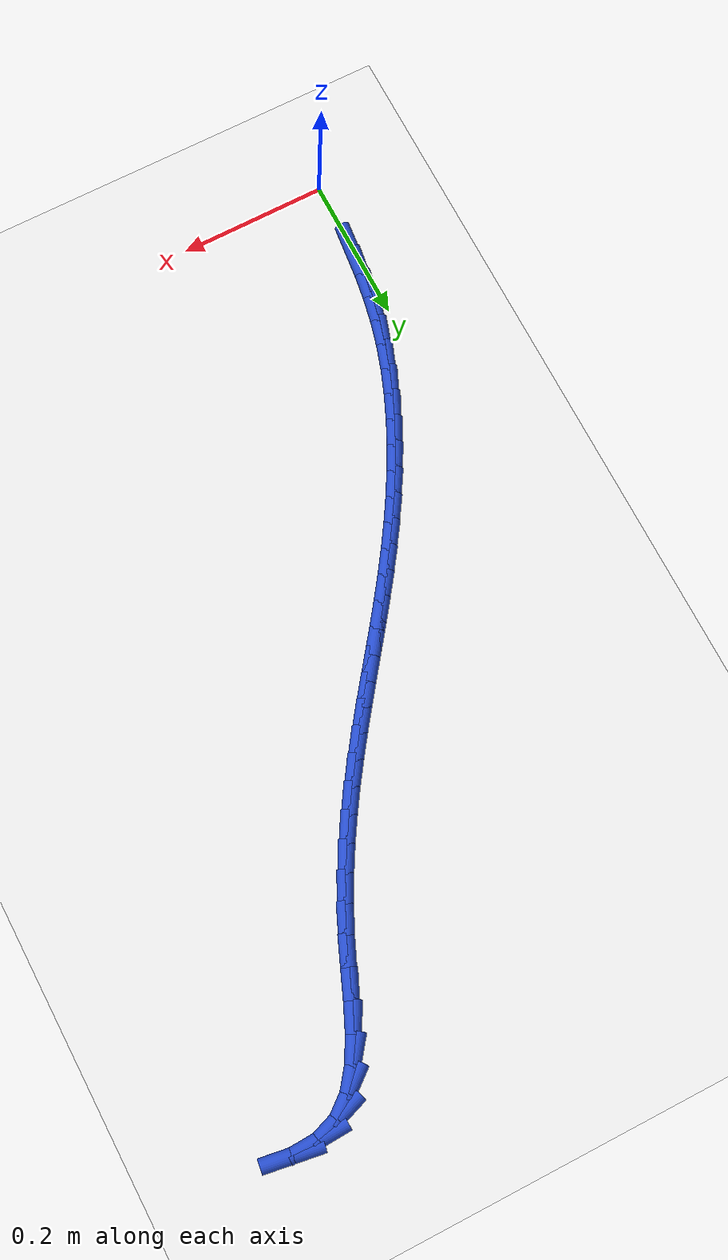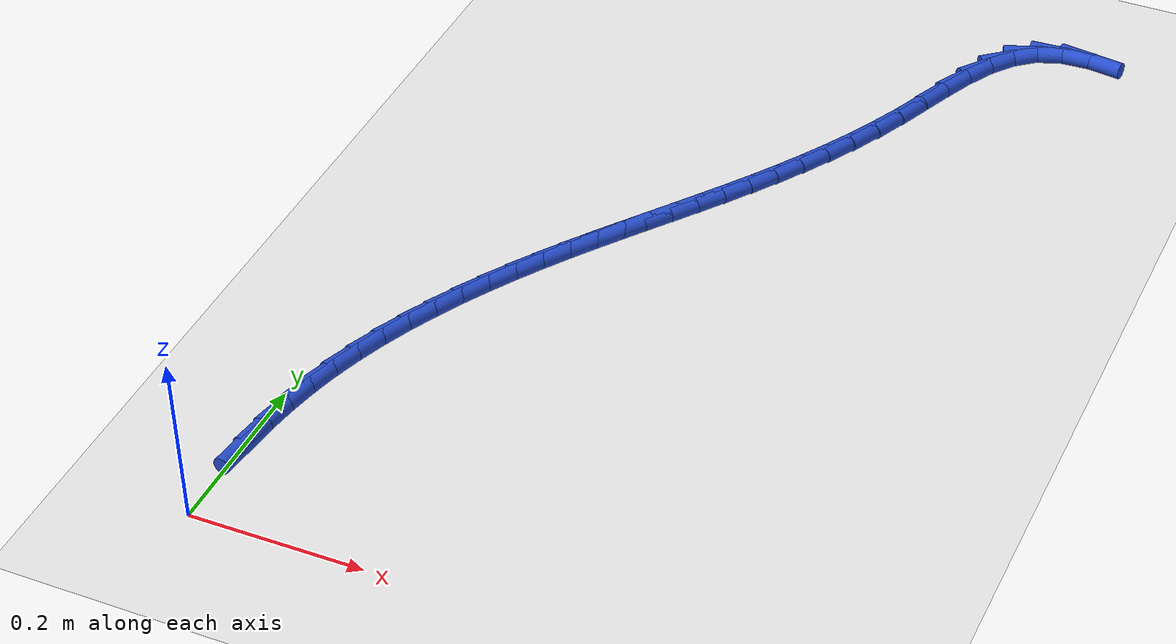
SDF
<sdf version="1.6">
 <world name="default">
  <model name="ground_plane">
   <static>1</static>
   <link name="link">
    <collision name="collision">
     <geometry><plane><normal>0 0 1</normal><size>100 100</size></plane></geometry>
     <surface><friction><ode><mu>100</mu><mu2>50</mu2></ode></friction></surface>
    </collision>
    <visual name="visual">
     <cast_shadows>0</cast_shadows>
     <geometry><plane><normal>0 0 1</normal><size>100 100</size></plane></geometry>
     <material>
      <script><uri>file://media/materials/scripts/gazebo.material</uri><name>Gazebo/WhiteGlow</name></script>
     </material>
    </visual>
   </link>
  </model>
  <model name="line">
   <link name="link_3">
    <pose>0.00487525272768681 0.10636903390676378 0.01 0 1.57 1.455578202647358</pose>
    <collision name="collision">
     <geometry><cylinder><radius>0.01</radius><length>0.08</length></cylinder></geometry>
    </collision>
    <visual name="visual">
     <material>
      <script><name>Gazebo/Blue</name><uri>file://media/materials/scripts/gazebo.material</uri></script>
     </material>
     <geometry><cylinder><radius>0.01</radius><length>0.08</length></cylinder></geometry>
    </visual>
   </link>
   <link name="link_4">
    <pose>0.008914769090732067 0.14127348493889702 0.01 0 1.57 1.4118207604691668</pose>
    <collision name="collision">
     <geometry><cylinder><radius>0.01</radius><length>0.08</length></cylinder></geometry>
    </collision>
    <visual name="visual">
     <material>
      <script><name>Gazebo/Blue</name><uri>file://media/materials/scripts/gazebo.material</uri></script>
     </material>
     <geometry><cylinder><radius>0.01</radius><length>0.08</length></cylinder></geometry>
    </visual>
   </link>
   <link name="link_5">
    <pose>0.014458814000630576 0.17585276555083262 0.01 0 1.57 1.3626906049853438</pose>
    <collision name="collision">
     <geometry><cylinder><radius>0.01</radius><length>0.08</length></cylinder></geometry>
    </collision>
    <visual name="visual">
     <material>
      <script><name>Gazebo/Blue</name><uri>file://media/materials/scripts/gazebo.material</uri></script>
     </material>
     <geometry><cylinder><radius>0.01</radius><length>0.08</length></cylinder></geometry>
    </visual>
   </link>
   <link name="link_6">
    <pose>0.0216857749493494 0.21007734157148839 0.01 0 1.57 1.308523818144727</pose>
    <collision name="collision">
     <geometry><cylinder><radius>0.01</radius><length>0.08</length></cylinder></geometry>
    </collision>
    <visual name="visual">
     <material>
      <script><name>Gazebo/Blue</name><uri>file://media/materials/scripts/gazebo.material</uri></script>
     </material>
     <geometry><cylinder><radius>0.01</radius><length>0.08</length></cylinder></geometry>
    </visual>
   </link>
   <link name="link_7">
    <pose>0.030770375702281652 0.24391748311709124 0.01 0 1.57 1.2536198985429525</pose>
    <collision name="collision">
     <geometry><cylinder><radius>0.01</radius><length>0.08</length></cylinder></geometry>
    </collision>
    <visual name="visual">
     <material>
      <script><name>Gazebo/Blue</name><uri>file://media/materials/scripts/gazebo.material</uri></script>
     </material>
     <geometry><cylinder><radius>0.01</radius><length>0.08</length></cylinder></geometry>
    </visual>
   </link>
   <link name="link_8">
    <pose>0.04174016180733978 0.2773355981874211 0.01 0 1.57 1.2031949497875287</pose>
    <collision name="collision">
     <geometry><cylinder><radius>0.01</radius><length>0.08</length></cylinder></geometry>
    </collision>
    <visual name="visual">
     <material>
      <script><name>Gazebo/Blue</name><uri>file://media/materials/scripts/gazebo.material</uri></script>
     </material>
     <geometry><cylinder><radius>0.01</radius><length>0.08</length></cylinder></geometry>
    </visual>
   </link>
   <link name="link_9">
    <pose>0.054428694339304085 0.310283732321407 0.01 0 1.57 1.1573591260311897</pose>
    <collision name="collision">
     <geometry><cylinder><radius>0.01</radius><length>0.08</length></cylinder></geometry>
    </collision>
    <visual name="visual">
     <material>
      <script><name>Gazebo/Blue</name><uri>file://media/materials/scripts/gazebo.material</uri></script>
     </material>
     <geometry><cylinder><radius>0.01</radius><length>0.08</length></cylinder></geometry>
    </visual>
   </link>
   <link name="link_10">
    <pose>0.06865628506568291 0.34271322329294035 0.01 0 1.57 1.1158265058710326</pose>
    <collision name="collision">
     <geometry><cylinder><radius>0.01</radius><length>0.08</length></cylinder></geometry>
    </collision>
    <visual name="visual">
     <material>
      <script><name>Gazebo/Blue</name><uri>file://media/materials/scripts/gazebo.material</uri></script>
     </material>
     <geometry><cylinder><radius>0.01</radius><length>0.08</length></cylinder></geometry>
    </visual>
   </link>
   <link name="link_11">
    <pose>0.0842432457539847 0.37457540887591245 0.01 0 1.57 1.0783011402010652</pose>
    <collision name="collision">
     <geometry><cylinder><radius>0.01</radius><length>0.08</length></cylinder></geometry>
    </collision>
    <visual name="visual">
     <material>
      <script><name>Gazebo/Blue</name><uri>file://media/materials/scripts/gazebo.material</uri></script>
     </material>
     <geometry><cylinder><radius>0.01</radius><length>0.08</length></cylinder></geometry>
    </visual>
   </link>
   <link name="link_12">
    <pose>0.10100988817171773 0.4058216268442151 0.01 0 1.57 1.0444955488038663</pose>
    <collision name="collision">
     <geometry><cylinder><radius>0.01</radius><length>0.08</length></cylinder></geometry>
    </collision>
    <visual name="visual">
     <material>
      <script><name>Gazebo/Blue</name><uri>file://media/materials/scripts/gazebo.material</uri></script>
     </material>
     <geometry><cylinder><radius>0.01</radius><length>0.08</length></cylinder></geometry>
    </visual>
   </link>
   <link name="link_13">
    <pose>0.11877652408639047 0.43640321497173945 0.01 0 1.57 1.0141433413400252</pose>
    <collision name="collision">
     <geometry><cylinder><radius>0.01</radius><length>0.08</length></cylinder></geometry>
    </collision>
    <visual name="visual">
     <material>
      <script><name>Gazebo/Blue</name><uri>file://media/materials/scripts/gazebo.material</uri></script>
     </material>
     <geometry><cylinder><radius>0.01</radius><length>0.08</length></cylinder></geometry>
    </visual>
   </link>
   <link name="link_14">
    <pose>0.13736346526551124 0.4662715110323771 0.01 0 1.57 0.9870227367610622</pose>
    <collision name="collision">
     <geometry><cylinder><radius>0.01</radius><length>0.08</length></cylinder></geometry>
    </collision>
    <visual name="visual">
     <material>
      <script><name>Gazebo/Blue</name><uri>file://media/materials/scripts/gazebo.material</uri></script>
     </material>
     <geometry><cylinder><radius>0.01</radius><length>0.08</length></cylinder></geometry>
    </visual>
   </link>
   <link name="link_15">
    <pose>0.15659173019144332 0.4953798761029348 0.01 0 1.57 0.9636544328907303</pose>
    <collision name="collision">
     <geometry><cylinder><radius>0.01</radius><length>0.08</length></cylinder></geometry>
    </collision>
    <visual name="visual">
     <material>
      <script><name>Gazebo/Blue</name><uri>file://media/materials/scripts/gazebo.material</uri></script>
     </material>
     <geometry><cylinder><radius>0.01</radius><length>0.08</length></cylinder></geometry>
    </visual>
   </link>
   <link name="link_16">
    <pose>0.17631278960857188 0.5237688551507285 0.01 0 1.57 0.9451159483217858</pose>
    <collision name="collision">
     <geometry><cylinder><radius>0.01</radius><length>0.08</length></cylinder></geometry>
    </collision>
    <visual name="visual">
     <material>
      <script><name>Gazebo/Blue</name><uri>file://media/materials/scripts/gazebo.material</uri></script>
     </material>
     <geometry><cylinder><radius>0.01</radius><length>0.08</length></cylinder></geometry>
    </visual>
   </link>
   <link name="link_17">
    <pose>0.19641948788670976 0.5515974445614487 0.01 0 1.57 0.9317094310504189</pose>
    <collision name="collision">
     <geometry><cylinder><radius>0.01</radius><length>0.08</length></cylinder></geometry>
    </collision>
    <visual name="visual">
     <material>
      <script><name>Gazebo/Blue</name><uri>file://media/materials/scripts/gazebo.material</uri></script>
     </material>
     <geometry><cylinder><radius>0.01</radius><length>0.08</length></cylinder></geometry>
    </visual>
   </link>
   <link name="link_18">
    <pose>0.21680762490326466 0.5790331022482214 0.01 0 1.57 0.9235954429858738</pose>
    <collision name="collision">
     <geometry><cylinder><radius>0.01</radius><length>0.08</length></cylinder></geometry>
    </collision>
    <visual name="visual">
     <material>
      <script><name>Gazebo/Blue</name><uri>file://media/materials/scripts/gazebo.material</uri></script>
     </material>
     <geometry><cylinder><radius>0.01</radius><length>0.08</length></cylinder></geometry>
    </visual>
   </link>
   <link name="link_19">
    <pose>0.23737300053564445 0.6062432861241727 0.01 0 1.57 0.9208612967935044</pose>
    <collision name="collision">
     <geometry><cylinder><radius>0.01</radius><length>0.08</length></cylinder></geometry>
    </collision>
    <visual name="visual">
     <material>
      <script><name>Gazebo/Blue</name><uri>file://media/materials/scripts/gazebo.material</uri></script>
     </material>
     <geometry><cylinder><radius>0.01</radius><length>0.08</length></cylinder></geometry>
    </visual>
   </link>
   <link name="link_20">
    <pose>0.25801141466125677 0.6333954541024281 0.01 0 1.57 0.923525195483748</pose>
    <collision name="collision">
     <geometry><cylinder><radius>0.01</radius><length>0.08</length></cylinder></geometry>
    </collision>
    <visual name="visual">
     <material>
      <script><name>Gazebo/Blue</name><uri>file://media/materials/scripts/gazebo.material</uri></script>
     </material>
     <geometry><cylinder><radius>0.01</radius><length>0.08</length></cylinder></geometry>
    </visual>
   </link>
   <link name="link_21">
    <pose>0.27861866715750966 0.6606570640961146 0.01 0 1.57 0.9315381721507964</pose>
    <collision name="collision">
     <geometry><cylinder><radius>0.01</radius><length>0.08</length></cylinder></geometry>
    </collision>
    <visual name="visual">
     <material>
      <script><name>Gazebo/Blue</name><uri>file://media/materials/scripts/gazebo.material</uri></script>
     </material>
     <geometry><cylinder><radius>0.01</radius><length>0.08</length></cylinder></geometry>
    </visual>
   </link>
   <link name="link_22">
    <pose>0.29909055790181094 0.6881955740183578 0.01 0 1.57 0.9447835280982422</pose>
    <collision name="collision">
     <geometry><cylinder><radius>0.01</radius><length>0.08</length></cylinder></geometry>
    </collision>
    <visual name="visual">
     <material>
      <script><name>Gazebo/Blue</name><uri>file://media/materials/scripts/gazebo.material</uri></script>
     </material>
     <geometry><cylinder><radius>0.01</radius><length>0.08</length></cylinder></geometry>
    </visual>
   </link>
   <link name="link_23">
    <pose>0.3193228867715682 0.7161784417822838 0.01 0 1.57 0.963074153045013</pose>
    <collision name="collision">
     <geometry><cylinder><radius>0.01</radius><length>0.08</length></cylinder></geometry>
    </collision>
    <visual name="visual">
     <material>
      <script><name>Gazebo/Blue</name><uri>file://media/materials/scripts/gazebo.material</uri></script>
     </material>
     <geometry><cylinder><radius>0.01</radius><length>0.08</length></cylinder></geometry>
    </visual>
   </link>
   <link name="link_24">
    <pose>0.3392114536441894 0.7447731253010184 0.01 0 1.57 0.9861487482776489</pose>
    <collision name="collision">
     <geometry><cylinder><radius>0.01</radius><length>0.08</length></cylinder></geometry>
    </collision>
    <visual name="visual">
     <material>
      <script><name>Gazebo/Blue</name><uri>file://media/materials/scripts/gazebo.material</uri></script>
     </material>
     <geometry><cylinder><radius>0.01</radius><length>0.08</length></cylinder></geometry>
    </visual>
   </link>
   <link name="link_25">
    <pose>0.3586520583970824 0.7741470824876877 0.01 0 1.57 1.01366850116137</pose>
    <collision name="collision">
     <geometry><cylinder><radius>0.01</radius><length>0.08</length></cylinder></geometry>
    </collision>
    <visual name="visual">
     <material>
      <script><name>Gazebo/Blue</name><uri>file://media/materials/scripts/gazebo.material</uri></script>
     </material>
     <geometry><cylinder><radius>0.01</radius><length>0.08</length></cylinder></geometry>
    </visual>
   </link>
   <link name="link_26">
    <pose>0.3775405009076549 0.804467771255418 0.01 0 1.57 1.0452160859231854</pose>
    <collision name="collision">
     <geometry><cylinder><radius>0.01</radius><length>0.08</length></cylinder></geometry>
    </collision>
    <visual name="visual">
     <material>
      <script><name>Gazebo/Blue</name><uri>file://media/materials/scripts/gazebo.material</uri></script>
     </material>
     <geometry><cylinder><radius>0.01</radius><length>0.08</length></cylinder></geometry>
    </visual>
   </link>
   <link name="link_27">
    <pose>0.39577258105331475 0.8359026495173351 0.01 0 1.57 1.0802988757692995</pose>
    <collision name="collision">
     <geometry><cylinder><radius>0.01</radius><length>0.08</length></cylinder></geometry>
    </collision>
    <visual name="visual">
     <material>
      <script><name>Gazebo/Blue</name><uri>file://media/materials/scripts/gazebo.material</uri></script>
     </material>
     <geometry><cylinder><radius>0.01</radius><length>0.08</length></cylinder></geometry>
    </visual>
   </link>
   <link name="link_28">
    <pose>0.41324409871146967 0.8686191751865651 0.01 0 1.57 1.118357844758428</pose>
    <collision name="collision">
     <geometry><cylinder><radius>0.01</radius><length>0.08</length></cylinder></geometry>
    </collision>
    <visual name="visual">
     <material>
      <script><name>Gazebo/Blue</name><uri>file://media/materials/scripts/gazebo.material</uri></script>
     </material>
     <geometry><cylinder><radius>0.01</radius><length>0.08</length></cylinder></geometry>
    </visual>
   </link>
   <link name="link_29">
    <pose>0.4298508537595276 0.9027848061762339 0.01 0 1.57 1.1579581151346499</pose>
    <collision name="collision">
     <geometry><cylinder><radius>0.01</radius><length>0.08</length></cylinder></geometry>
    </collision>
    <visual name="visual">
     <material>
      <script><name>Gazebo/Blue</name><uri>file://media/materials/scripts/gazebo.material</uri></script>
     </material>
     <geometry><cylinder><radius>0.01</radius><length>0.08</length></cylinder></geometry>
    </visual>
   </link>
   <link name="link_30">
    <pose>0.4455087262615198 0.9385325783194586 0.01 0 1.57 1.176187809699897</pose>
    <collision name="collision">
     <geometry><cylinder><radius>0.01</radius><length>0.08</length></cylinder></geometry>
    </collision>
    <visual name="visual">
     <material>
      <script><name>Gazebo/Blue</name><uri>file://media/materials/scripts/gazebo.material</uri></script>
     </material>
     <geometry><cylinder><radius>0.01</radius><length>0.08</length></cylinder></geometry>
    </visual>
   </link>
   <link name="link_31">
    <pose>0.4607034467703435 0.9750186720301856 0.01 0 1.57 1.1485363390130836</pose>
    <collision name="collision">
     <geometry><cylinder><radius>0.01</radius><length>0.08</length></cylinder></geometry>
    </collision>
    <visual name="visual">
     <material>
      <script><name>Gazebo/Blue</name><uri>file://media/materials/scripts/gazebo.material</uri></script>
     </material>
     <geometry><cylinder><radius>0.01</radius><length>0.08</length></cylinder></geometry>
    </visual>
   </link>
   <link name="link_32">
    <pose>0.47655796494757274 1.0103069269212723 0.01 0 1.57 1.0675294267235134</pose>
    <collision name="collision">
     <geometry><cylinder><radius>0.01</radius><length>0.08</length></cylinder></geometry>
    </collision>
    <visual name="visual">
     <material>
      <script><name>Gazebo/Blue</name><uri>file://media/materials/scripts/gazebo.material</uri></script>
     </material>
     <geometry><cylinder><radius>0.01</radius><length>0.08</length></cylinder></geometry>
    </visual>
   </link>
   <link name="link_33">
    <pose>0.4942288371236857 1.0424035730092327 0.01 0 1.57 0.9164372473508</pose>
    <collision name="collision">
     <geometry><cylinder><radius>0.01</radius><length>0.08</length></cylinder></geometry>
    </collision>
    <visual name="visual">
     <material>
      <script><name>Gazebo/Blue</name><uri>file://media/materials/scripts/gazebo.material</uri></script>
     </material>
     <geometry><cylinder><radius>0.01</radius><length>0.08</length></cylinder></geometry>
    </visual>
   </link>
   <link name="link_34">
    <pose>0.5148726196291603 1.069314840310581 0.01 0 1.57 0.6726087202908481</pose>
    <collision name="collision">
     <geometry><cylinder><radius>0.01</radius><length>0.08</length></cylinder></geometry>
    </collision>
    <visual name="visual">
     <material>
      <script><name>Gazebo/Blue</name><uri>file://media/materials/scripts/gazebo.material</uri></script>
     </material>
     <geometry><cylinder><radius>0.01</radius><length>0.08</length></cylinder></geometry>
    </visual>
   </link>
   <link name="link_35">
    <pose>0.5396458687944746 1.089046958841831 0.01 0 1.57 0.3423638444105744</pose>
    <collision name="collision">
     <geometry><cylinder><radius>0.01</radius><length>0.08</length></cylinder></geometry>
    </collision>
    <visual name="visual">
     <material>
      <script><name>Gazebo/Blue</name><uri>file://media/materials/scripts/gazebo.material</uri></script>
     </material>
     <geometry><cylinder><radius>0.01</radius><length>0.08</length></cylinder></geometry>
    </visual>
   </link>
   <link name="link_36">
    <pose>0.5696240729774585 1.0997311530559803 0.01 0 1.57 0.047931330549219525</pose>
    <collision name="collision">
     <geometry><cylinder><radius>0.01</radius><length>0.08</length></cylinder></geometry>
    </collision>
    <visual name="visual">
     <material>
      <script><name>Gazebo/Blue</name><uri>file://media/materials/scripts/gazebo.material</uri></script>
     </material>
     <geometry><cylinder><radius>0.01</radius><length>0.08</length></cylinder></geometry>
    </visual>
   </link>
   <link name="link_37">
    <pose>0.6046424740166854 1.1014109181796632 0.01 0 1.57 -0.14759777339000985</pose>
    <collision name="collision">
     <geometry><cylinder><radius>0.01</radius><length>0.08</length></cylinder></geometry>
    </collision>
    <visual name="visual">
     <material>
      <script><name>Gazebo/Blue</name><uri>file://media/materials/scripts/gazebo.material</uri></script>
     </material>
     <geometry><cylinder><radius>0.01</radius><length>0.08</length></cylinder></geometry>
    </visual>
   </link>
  </model>
 </world>
</sdf>
